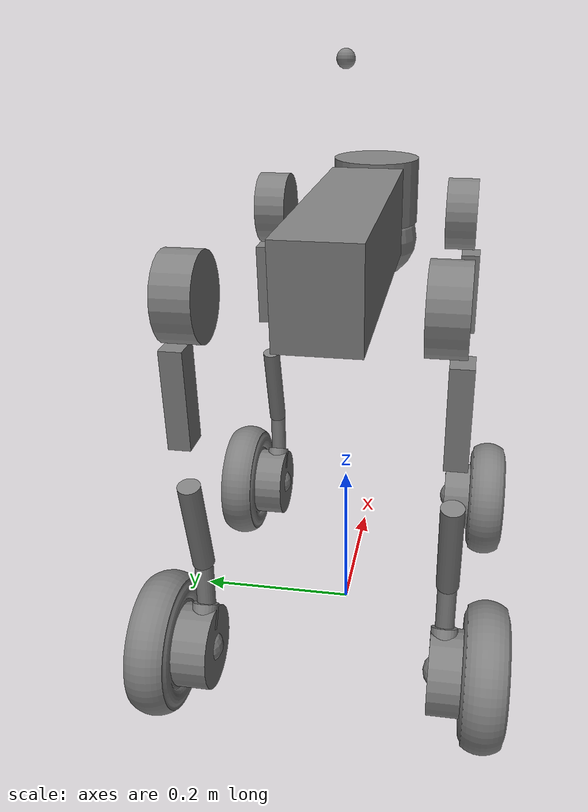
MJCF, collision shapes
<mujoco model="go2w_description">
  <compiler angle="radian" meshdir="assets/" autolimits="true"/>

  <option timestep="0.002" gravity="0 0 -9.81"/>

  <default>
    <joint damping="0.1" frictionloss="0.1"/>
    <geom contype="1" conaffinity="1" condim="3" solref="0.02 1" solimp="0.9 0.95 0.001"/>
    <motor ctrlrange="-1 1" ctrllimited="true"/>
    <default class="visual">
      <geom type="mesh" contype="0" conaffinity="0" group="2"/>
    </default>
    <default class="collision">
      <geom group="3"/>
    </default>
  </default>

  <asset>
    <mesh name="base" file="base.obj"/>
    <mesh name="hip" file="hip.obj"/>
    <mesh name="thigh" file="thigh.obj"/>
    <mesh name="thigh_mirror" file="thigh_mirror.obj"/>
    <mesh name="calf" file="calf.stl"/>
    <mesh name="calf_mirror" file="calf_mirror.stl"/>
    <mesh name="left_wheel" file="left_wheel.obj"/>
    <mesh name="right_wheel" file="right_wheel.obj"/>

    <texture type="skybox" builtin="gradient" rgb1="0.3 0.5 0.7" rgb2="0 0 0" width="512" height="512"/>
    <texture name="texplane" type="2d" builtin="checker" rgb1="0.2 0.3 0.4" rgb2="0.1 0.2 0.3" width="512" height="512" mark="cross" markrgb="0.8 0.8 0.8"/>
    <material name="matplane" reflectance="0.3" texture="texplane" texrepeat="1 1" texuniform="true"/>
  </asset>

  <worldbody>
    <light directional="true" diffuse="0.4 0.4 0.4" specular="0.1 0.1 0.1" pos="0 0 5.0" dir="0 0 -1" castshadow="false"/>
    <light directional="true" diffuse="0.6 0.6 0.6" specular="0.2 0.2 0.2" pos="0 0 4" dir="0 0 -1"/>

    <body name="base" pos="0 0 0.5">
      <freejoint name="base_freejoint"/>
      <inertial pos="0.021112 0 -0.005366" mass="6.921"
                diaginertia="0.02448 0.098077 0.107"/>
      <geom class="visual" type="mesh" mesh="base"/>
      <geom name="base_collision" class="collision" type="box" size="0.1881 0.04675 0.057" pos="0 0 0"/>

      <!-- Head_upper -->
      <body name="Head_upper" pos="0.285 0 0.01">
        <inertial pos="0 0 0" mass="0.001" diaginertia="9.6e-06 9.6e-06 9.6e-06"/>
        <geom name="Head_upper_collision" class="collision" type="cylinder" size="0.06 0.045" pos="0 0 0"/>

        <!-- Head_lower -->
        <body name="Head_lower" pos="0.008 0 -0.07">
          <inertial pos="0 0 0" mass="0.001" diaginertia="9.6e-06 9.6e-06 9.6e-06"/>
          <geom name="Head_lower_collision" class="collision" type="sphere" size="0.06" pos="0 0 0"/>
        </body>
      </body>

      <!-- alternative definition of the imu_site-->

      <!-- IMU sensor -->
      <body name="imu" pos="-0.02557 0 0.04232">
        <inertial pos="0 0 0" mass="0" diaginertia="0 0 0"/>
        <site name="imu_site" size="0.01"/>
      </body>

      <!-- Radar sensor -->
      <body name="terrain_scan" pos="0 0 0.2" quat="1 0 0 0">
        <inertial pos="0 0 0" mass="0" diaginertia="0 0 0"/>
        <site name="terrain_scan_site" size="0.01"/>
      </body>

      <!-- Radar sensor -->
      <body name="height_scanner_base" pos="0 0 0.2" quat="1 0 0 0">
        <inertial pos="0 0 0" mass="0" diaginertia="0 0 0"/>
        <site name="height_scanner_base_site" size="0.01"/>
      </body>

      <!-- FL (Front Left) Leg -->
      <body name="FL_hip" pos="0.1934 0.0465 0">
        <inertial pos="-0.0054 0.00194 -0.000105" mass="0.678"
                  diaginertia="0.00048 0.000884 0.000596"/>
        <joint name="FL_hip_joint" axis="1 0 0" range="-1.0472 1.0472"/>
        <geom class="visual" type="mesh" mesh="hip"/>
        <geom name="FL_hip_collision" class="collision" type="cylinder" size="0.046 0.02" pos="0 0.08 0" quat="0.7071068 0.7071068 0 0"/>

        <body name="FL_thigh" pos="0 0.0955 0">
          <inertial pos="-0.00374 -0.0223 -0.0327" mass="1.152"
                    diaginertia="0.00584 0.0058 0.00103"/>
          <joint name="FL_thigh_joint" axis="0 1 0" range="-1.5708 3.4907"/>
          <geom class="visual" type="mesh" mesh="thigh"/>
          <geom name="FL_thigh_collision" class="collision" type="box" size="0.055 0.01225 0.017" pos="0 0 -0.1065" quat="0.7071068 0 0.7071068 0"/>

          <body name="FL_calf" pos="0 0 -0.213">
            <inertial pos="0.00548 -0.000975 -0.115" mass="0.154"
                      diaginertia="0.00108 0.0011 3.29e-05"/>
            <joint name="FL_calf_joint" axis="0 1 0" range="-2.7227 -0.83776"/>
            <geom class="visual" type="mesh" mesh="calf"/>
            <geom name="FL_calf_collision" class="collision" type="cylinder" size="0.012 0.06" pos="0.008 0 -0.06" quat="0.9950042 0 -0.0998334 0"/>

            <!-- FL_calflower -->
            <body name="FL_calflower" pos="0.020 0 -0.148" quat="0.9996897 0 0.0249948 0">
              <geom name="FL_calflower_collision" class="collision" type="cylinder" size="0.011 0.0325" pos="0 0 0"/>

              <!-- FL_calflower1 -->
              <body name="FL_calflower1" pos="-0.01 0 -0.04" quat="0.9702957 0 0.2419219 0">
                <geom name="FL_calflower1_collision" class="collision" type="cylinder" size="0.0155 0.015" pos="0 0 0"/>
              </body>
            </body>

            <!-- FL_foot_motor -->
            <body name="FL_foot_motor" pos="-0.00 0.01 -0.2264">
              <inertial pos="0 0 0" mass="0.646" diaginertia="0.001 0.0016 0.001"/>
              <geom name="FL_foot_motor_collision" class="collision" type="cylinder" size="0.05 0.025" pos="0 0 0" quat="0.7071068 0.7071068 0 0"/>
            </body>

            <!-- FL_foot (wheel) -->
            <body name="FL_foot" pos="0 0 -0.2264">
              <inertial pos="0 0.06 0" mass="0.520" diaginertia="0.0007 0.0012 0.0007"/>
              <joint name="FL_foot_joint" axis="0 1 0"/>
              <geom class="visual" type="mesh" mesh="left_wheel"/>
              <geom name="FL_foot_collision" class="collision" type="mesh" mesh="left_wheel"/>
              <site name="FL" type="sphere" size="0.022"/>
            </body>
          </body>
        </body>
      </body>

      <!-- FR (Front Right) Leg -->
      <body name="FR_hip" pos="0.1934 -0.0465 0">
        <inertial pos="-0.0054 -0.00194 -0.000105" mass="0.678"
                  diaginertia="0.00048 0.000884 0.000596"/>
        <joint name="FR_hip_joint" axis="1 0 0" range="-1.0472 1.0472"/>
        <geom class="visual" type="mesh" mesh="hip" quat="0 0 0 1"/>
        <geom name="FR_hip_collision" class="collision" type="cylinder" size="0.046 0.02" pos="0 -0.08 0" quat="0.7071068 0.7071068 0 0"/>

        <body name="FR_thigh" pos="0 -0.0955 0">
          <inertial pos="-0.00374 0.0223 -0.0327" mass="1.152"
                    diaginertia="0.00584 0.0058 0.00103"/>
          <joint name="FR_thigh_joint" axis="0 1 0" range="-1.5708 3.4907"/>
          <geom class="visual" type="mesh" mesh="thigh_mirror"/>
          <geom name="FR_thigh_collision" class="collision" type="box" size="0.055 0.01225 0.017" pos="0 0 -0.1065" quat="0.7071068 0 0.7071068 0"/>

          <body name="FR_calf" pos="0 0 -0.213">
            <inertial pos="0.00548 0.000975 -0.115" mass="0.154"
                      diaginertia="0.00108 0.0011 3.29e-05"/>

            <joint name="FR_calf_joint" axis="0 1 0" range="-2.7227 -0.83776"/>
            <geom class="visual" type="mesh" mesh="calf_mirror"/>
            <geom name="FR_calf_collision" class="collision" type="cylinder" size="0.013 0.06" pos="0.01 0 -0.06" quat="0.9950042 0 -0.0998334 0"/>

            <!-- FR_calflower -->
            <body name="FR_calflower" pos="0.020 0 -0.148" quat="0.9996897 0 0.0249948 0">
              <geom name="FR_calflower_collision" class="collision" type="cylinder" size="0.011 0.0325" pos="0 0 0"/>

              <!-- FR_calflower1 -->
              <body name="FR_calflower1" pos="-0.01 0 -0.04" quat="0.9702957 0 0.2419219 0">
                <geom name="FR_calflower1_collision" class="collision" type="cylinder" size="0.0155 0.015" pos="0 0 0"/>
              </body>
            </body>

            <!-- FR_foot_motor -->
            <body name="FR_foot_motor" pos="0.0 -0.01 -0.2264">
              <inertial pos="0 0 0" mass="0.646" diaginertia="0.001 0.0016 0.001"/>
              <geom name="FR_foot_motor_collision" class="collision" type="cylinder" size="0.05 0.025" pos="0 0 0" quat="0.7071068 0.7071068 0 0"/>
            </body>

            <!-- FR_foot (wheel) -->
            <body name="FR_foot" pos="0 0 -0.2264">
              <inertial pos="0 -0.06 0" mass="0.520" diaginertia="0.0007 0.0012 0.0007"/>

              <joint name="FR_foot_joint" axis="0 1 0"/>
              <geom class="visual" type="mesh" mesh="right_wheel"/>
              <geom name="FR_foot_collision" class="collision" type="mesh" mesh="right_wheel"/>
              <site name="FR" type="sphere" size="0.022"/>
            </body>
          </body>
        </body>
      </body>

      <!-- RL (Rear Left) Leg -->
      <body name="RL_hip" pos="-0.1934 0.0465 0">
        <inertial pos="0.0054 0.00194 -0.000105" mass="0.678"
                  diaginertia="0.00048 0.000884 0.000596"/>
        <joint name="RL_hip_joint" axis="1 0 0" range="-1.0472 1.0472"/>
        <geom class="visual" type="mesh" mesh="hip" quat="0 0 1 0"/>
        <geom name="RL_hip_collision" class="collision" type="cylinder" size="0.046 0.02" pos="0 0.08 0" quat="0.7071068 0.7071068 0 0"/>

        <body name="RL_thigh" pos="0 0.0955 0">
          <inertial pos="-0.00374 -0.0223 -0.0327" mass="1.152"
                    diaginertia="0.00584 0.0058 0.00103"/>
          <joint name="RL_thigh_joint" axis="0 1 0" range="-0.5236 4.5379"/>
          <geom class="visual" type="mesh" mesh="thigh"/>
          <geom name="RL_thigh_collision" class="collision" type="box" size="0.055 0.01225 0.017" pos="0 0 -0.1065" quat="0.7071068 0 0.7071068 0"/>

          <body name="RL_calf" pos="0 0 -0.213">
            <inertial pos="0.00548 -0.000975 -0.115" mass="0.154"
                      diaginertia="0.00108 0.0011 3.29e-05"/>
            <joint name="RL_calf_joint" axis="0 1 0" range="-2.7227 -0.83776"/>
            <geom class="visual" type="mesh" mesh="calf"/>
            <geom name="RL_calf_collision" class="collision" type="cylinder" size="0.013 0.06" pos="0.01 0 -0.06" quat="0.9950042 0 -0.0998334 0"/>

            <!-- RL_calflower -->
            <body name="RL_calflower" pos="0.020 0 -0.148" quat="0.9996897 0 0.0249948 0">
              <geom name="RL_calflower_collision" class="collision" type="cylinder" size="0.011 0.0325" pos="0 0 0"/>

              <!-- RL_calflower1 -->
              <body name="RL_calflower1" pos="-0.01 0 -0.04" quat="0.9702957 0 0.2419219 0">
                <geom name="RL_calflower1_collision" class="collision" type="cylinder" size="0.0155 0.015" pos="0 0 0"/>
              </body>
            </body>

            <!-- RL_foot_motor -->
            <body name="RL_foot_motor" pos="0.00 0.01 -0.2264">
              <inertial pos="0 0 0" mass="0.646" diaginertia="0.001 0.0016 0.001"/>
              <geom name="RL_foot_motor_collision" class="collision" type="cylinder" size="0.05 0.025" pos="0 0 0" quat="0.7071068 0.7071068 0 0"/>
            </body>

            <!-- RL_foot (wheel) -->
            <body name="RL_foot" pos="0.0 0 -0.2264">
              <inertial pos="0 0.06 0" mass="0.520" diaginertia="0.0007 0.0012 0.0007"/>

              <joint name="RL_foot_joint" axis="0 1 0"/>
              <geom class="visual" type="mesh" mesh="left_wheel"/>
              <geom name="RL_foot_collision" class="collision" type="mesh" mesh="left_wheel"/>
              <site name="RL" type="sphere" size="0.022"/>
            </body>
          </body>
        </body>
      </body>

      <!-- RR (Rear Right) Leg -->
      <body name="RR_hip" pos="-0.1934 -0.0465 0">
        <inertial pos="0.0054 -0.00194 -0.000105" mass="0.678"
                  diaginertia="0.00048 0.000884 0.000596"/>

        <joint name="RR_hip_joint" axis="1 0 0" range="-1.0472 1.0472"/>
        <geom class="visual" type="mesh" mesh="hip" quat="0 0 0 -1"/>
        <geom name="RR_hip_collision" class="collision" type="cylinder" size="0.046 0.02" pos="0 -0.08 0" quat="0.7071068 0.7071068 0 0"/>

        <body name="RR_thigh" pos="0 -0.0955 0">
          <inertial pos="-0.00374 0.0223 -0.0327" mass="1.152"
                    diaginertia="0.00584 0.0058 0.00103"/>

          <joint name="RR_thigh_joint" axis="0 1 0" range="-0.5236 4.5379"/>
          <geom class="visual" type="mesh" mesh="thigh_mirror"/>
          <geom name="RR_thigh_collision" class="collision" type="box" size="0.055 0.01225 0.017" pos="0 0 -0.1065" quat="0.7071068 0 0.7071068 0"/>

          <body name="RR_calf" pos="0 0 -0.213">
            <inertial pos="0.00548 0.000975 -0.115" mass="0.154"
                      diaginertia="0.00108 0.0011 3.29e-05"/>

            <joint name="RR_calf_joint" axis="0 1 0" range="-2.7227 -0.83776"/>
            <geom class="visual" type="mesh" mesh="calf_mirror"/>
            <geom name="RR_calf_collision" class="collision" type="cylinder" size="0.013 0.06" pos="0.01 0 -0.06" quat="0.9950042 0 -0.0998334 0"/>

            <!-- RR_calflower -->
            <body name="RR_calflower" pos="0.020 0 -0.148" quat="0.9996897 0 0.0249948 0">
              <geom name="RR_calflower_collision" class="collision" type="cylinder" size="0.011 0.0325" pos="0 0 0"/>

              <!-- RR_calflower1 -->
              <body name="RR_calflower1" pos="-0.01 0 -0.04" quat="0.9702957 0 0.2419219 0">
                <geom name="RR_calflower1_collision" class="collision" type="cylinder" size="0.0155 0.015" pos="0 0 0"/>
              </body>
            </body>

            <!-- RR_foot_motor -->
            <body name="RR_foot_motor" pos="0.00 -0.01 -0.2264">
              <inertial pos="0 0 0" mass="0.646" diaginertia="0.001 0.0016 0.001"/>
              <geom name="RR_foot_motor_collision" class="collision" type="cylinder" size="0.05 0.025" pos="0 0 0" quat="0.7071068 0.7071068 0 0"/>
            </body>

            <!-- RR_foot (wheel) -->
            <body name="RR_foot" pos="-0.0 0 -0.2264">
              <inertial pos="0 -0.06 0" mass="0.520" diaginertia="0.0007 0.0012 0.0007"/>

              <joint name="RR_foot_joint" axis="0 1 0"/>
              <geom class="visual" type="mesh" mesh="right_wheel"/>
              <geom name="RR_foot_collision" class="collision" type="mesh" mesh="right_wheel"/>
              <site name="RR" type="sphere" size="0.022"/>
            </body>
          </body>
        </body>
      </body>
    </body>
  </worldbody>

  <actuator>
    <!-- Hip actuators -->
    <motor name="FL_hip_motor" joint="FL_hip_joint" gear="1" ctrlrange="-23.7 23.7"/>
    <motor name="FR_hip_motor" joint="FR_hip_joint" gear="1" ctrlrange="-23.7 23.7"/>
    <motor name="RL_hip_motor" joint="RL_hip_joint" gear="1" ctrlrange="-23.7 23.7"/>
    <motor name="RR_hip_motor" joint="RR_hip_joint" gear="1" ctrlrange="-23.7 23.7"/>

    <!-- Thigh actuators -->
    <motor name="FL_thigh_motor" joint="FL_thigh_joint" gear="1" ctrlrange="-23.7 23.7"/>
    <motor name="FR_thigh_motor" joint="FR_thigh_joint" gear="1" ctrlrange="-23.7 23.7"/>
    <motor name="RL_thigh_motor" joint="RL_thigh_joint" gear="1" ctrlrange="-23.7 23.7"/>
    <motor name="RR_thigh_motor" joint="RR_thigh_joint" gear="1" ctrlrange="-23.7 23.7"/>

    <!-- Calf actuators -->
    <motor name="FL_calf_motor" joint="FL_calf_joint" gear="1" ctrlrange="-35.55 35.55"/>
    <motor name="FR_calf_motor" joint="FR_calf_joint" gear="1" ctrlrange="-35.55 35.55"/>
    <motor name="RL_calf_motor" joint="RL_calf_joint" gear="1" ctrlrange="-35.55 35.55"/>
    <motor name="RR_calf_motor" joint="RR_calf_joint" gear="1" ctrlrange="-35.55 35.55"/>

    <!-- Wheel actuators -->
    <motor name="FL_wheel_motor" joint="FL_foot_joint" gear="1" ctrlrange="-23.7 23.7"/>
    <motor name="FR_wheel_motor" joint="FR_foot_joint" gear="1" ctrlrange="-23.7 23.7"/>
    <motor name="RL_wheel_motor" joint="RL_foot_joint" gear="1" ctrlrange="-23.7 23.7"/>
    <motor name="RR_wheel_motor" joint="RR_foot_joint" gear="1" ctrlrange="-23.7 23.7"/>
  </actuator>

  <sensor>
    <gyro name="imu_ang_vel" site="imu_site"/>
    <velocimeter name="imu_lin_vel" site="imu_site"/>
    <accelerometer name="imu_lin_acc" site="imu_site"/>
    <!-- not used so far -->
  </sensor>
</mujoco>
